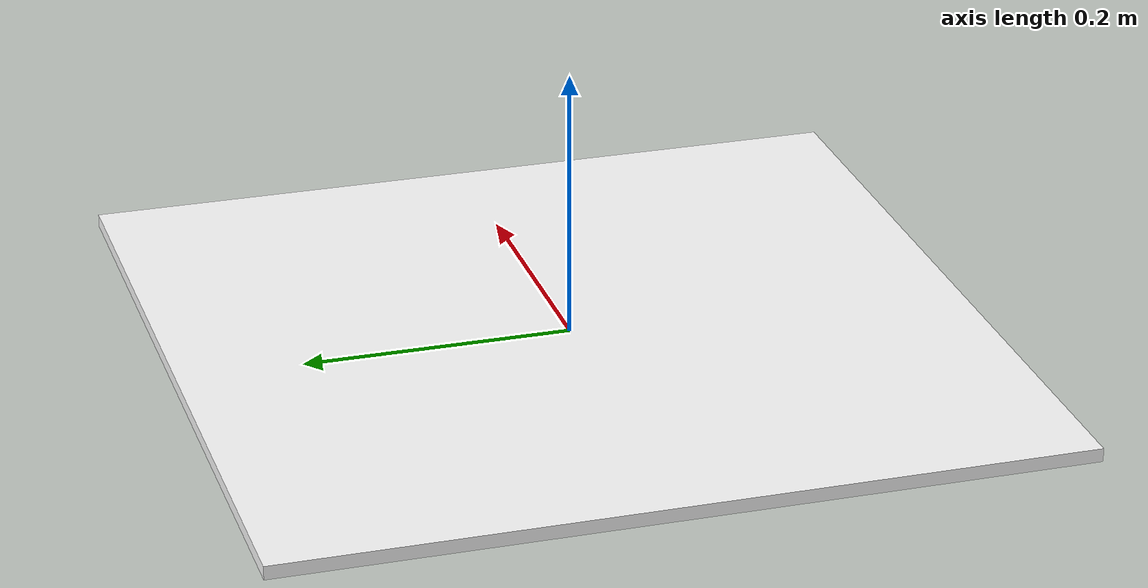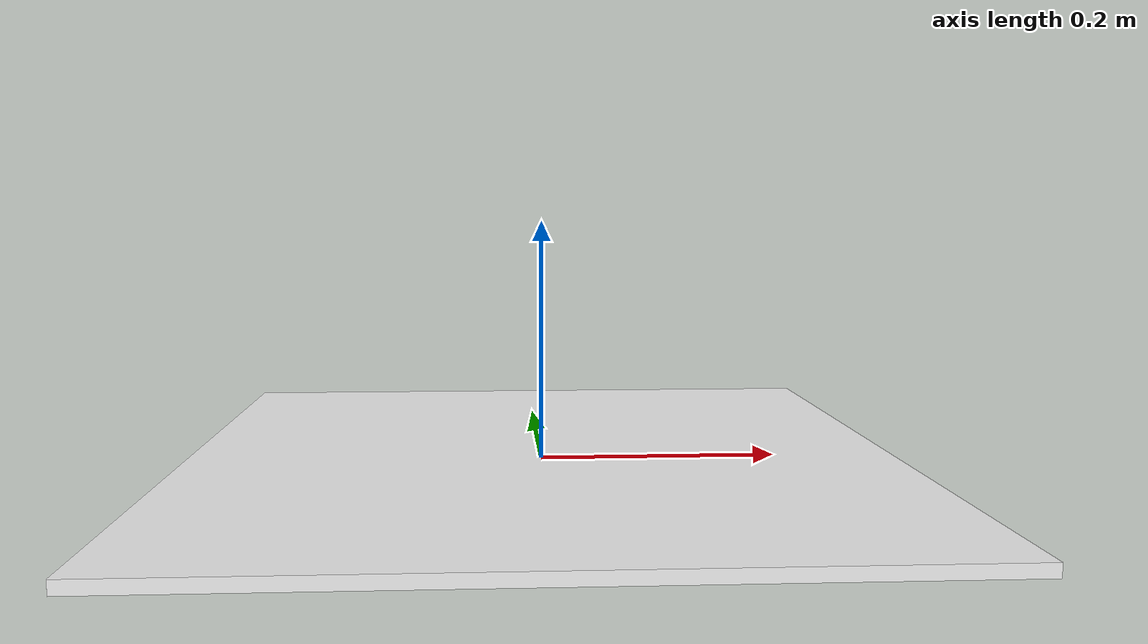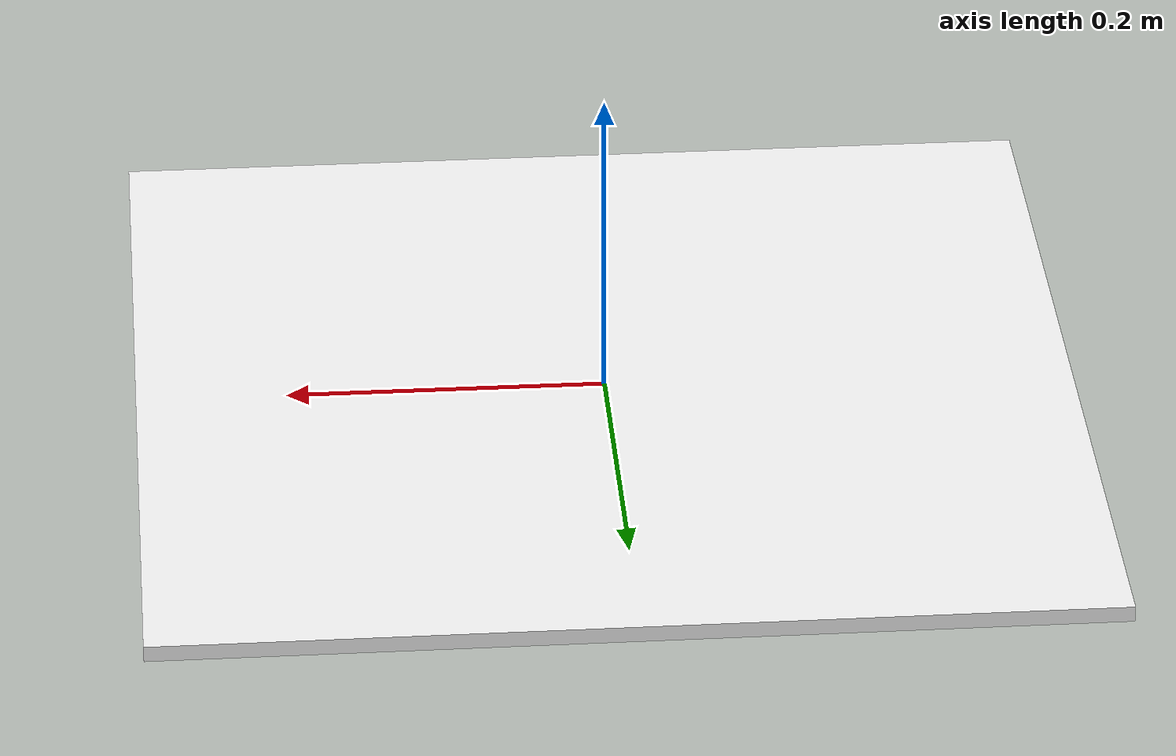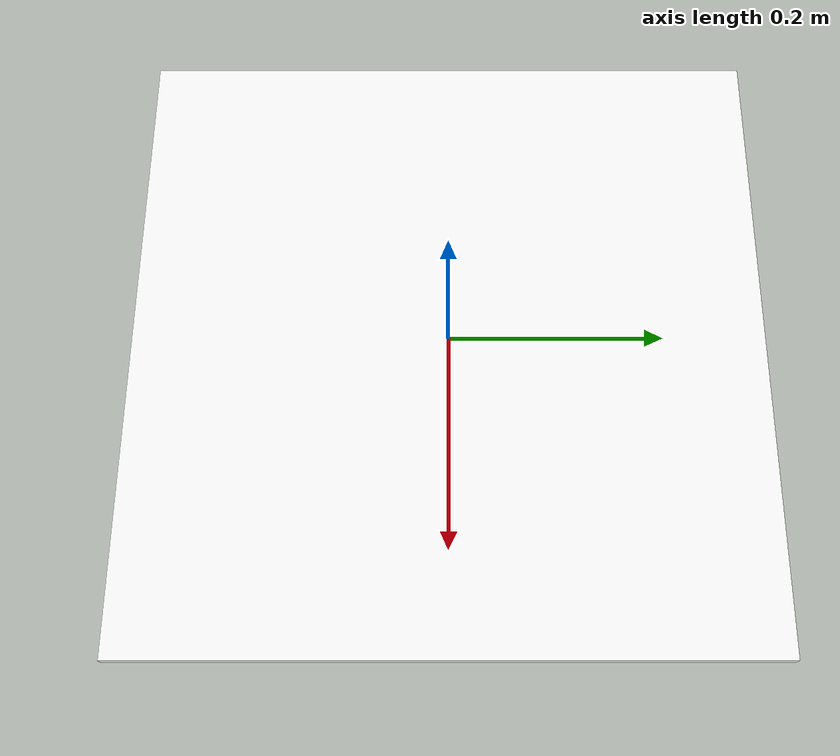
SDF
<?xml version='1.0'?>
<sdf version='1.6'>
  <model name='Apriltag36_11_00000'>
    <link name='main'>
    <pose frame=''>0 0 0 0 0 0</pose>
      <visual name='main_Visual'>
        <geometry>
          <box>
          <size>0.59 0.59 0.01</size>
          </box>
        </geometry>

        <material>
          <diffuse>1.0 1.0 1.0</diffuse>
          <specular>1.0 1.0 1.0</specular>
          <pbr>
            <metal>
              <albedo_map>materials/textures/tag36_11_00000.png</albedo_map>
              <metalness>0</metalness>
            </metal>
          </pbr>
        </material>

      </visual>
     </link>
    <static>1</static>
  </model>
</sdf>
